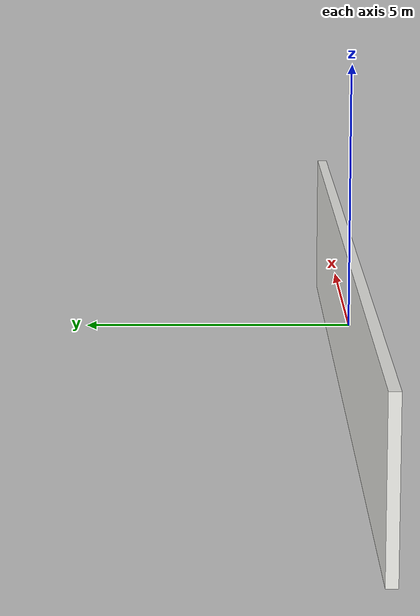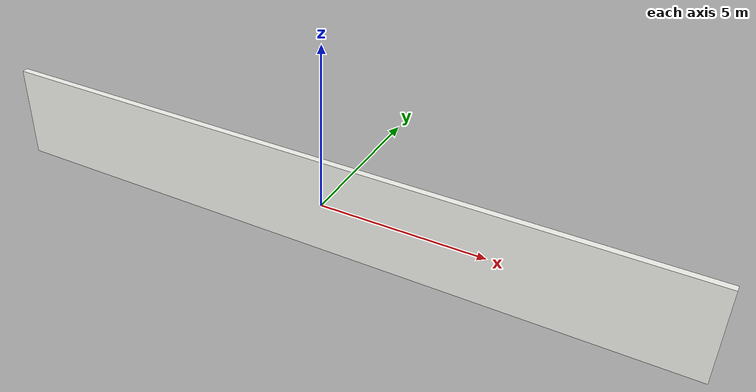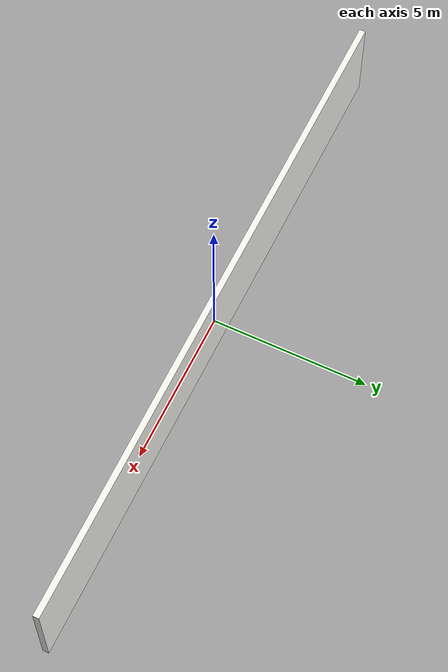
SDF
<?xml version="1.0"?>
<sdf version="1.10">
  <model name="wall_segment">
    <static>true</static>
    <link name="link">
      <collision name="col"><geometry><box><size>20 0.2 3</size></box></geometry></collision>
      <visual name="vis">
        <geometry><box><size>22 0.2 3</size></box></geometry>
        <material><diffuse>0.95 0.95 0.93 1</diffuse></material>
      </visual>
    </link>
  </model>
</sdf>
